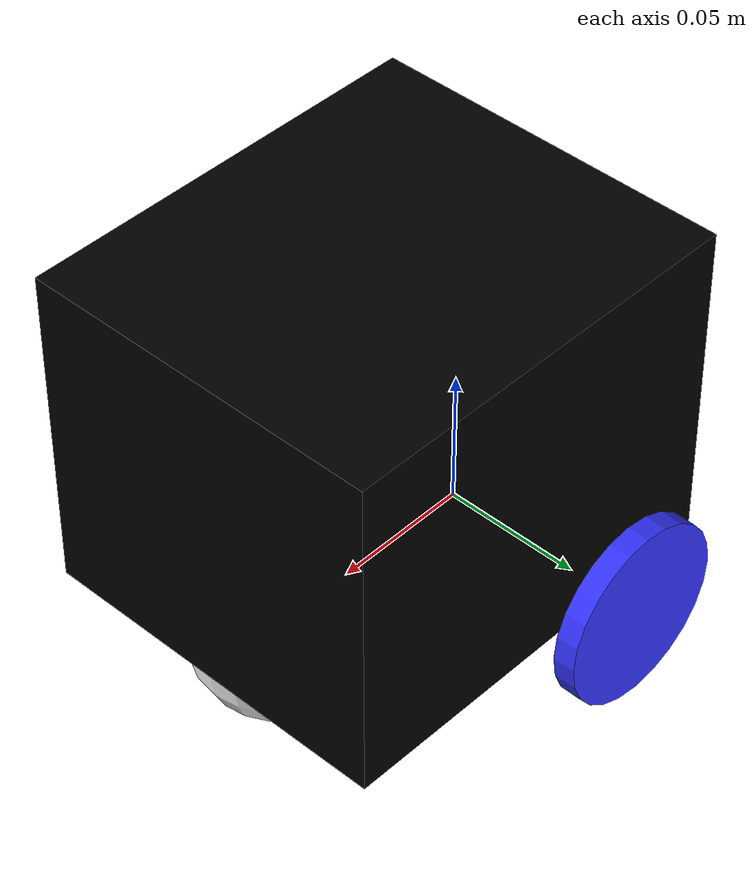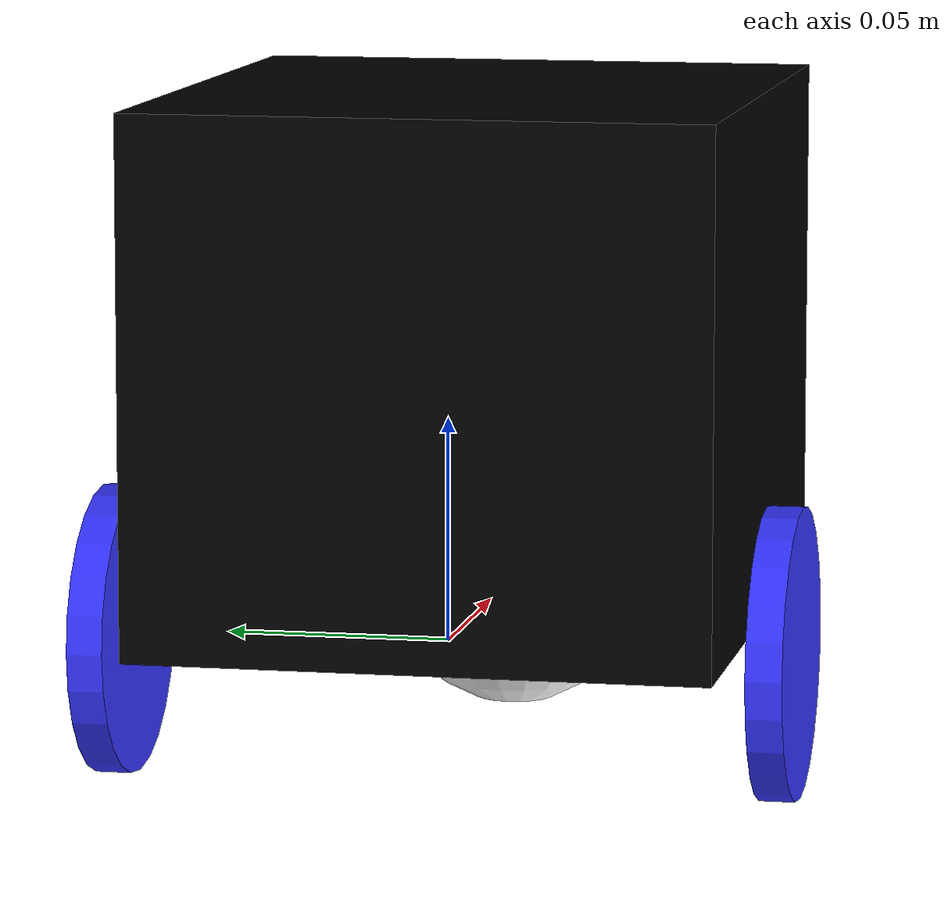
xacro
<?xml version="1.0"?>
<robot xmlns:xacro="http://www.ros.org/wiki/xacro" >

    <xacro:include filename="inertial_macros.xacro" />

    <!--COLORS-->

    <material name="white">
        <color rgba="1 1 1 1" />
    </material>

    <material name="orange">
        <color rgba="1 0.3 0.1 1" />
    </material>

    <material name="blue">
        <color rgba="0.2 0.2 1 1" />
    </material>

    <material name="black">
        <color rgba="0 0 0 1" />
    </material>

    <material name="red">
        <color rgba="1 0 0 1" />
    </material>

    <!--BASE LINK (standard to do in ROS)-->

    <link name="base_link">

    </link>

    <!--BASE FOOTPRINT LINK-->

    <joint name="base_footprint_joint" type="fixed">
        <parent link="base_link"/>
        <child link="base_footprint"/>
        <origin xyz="0 0 0" rpy="0 0 0"/>
    </joint>

    <link name="base_footprint">

    </link>

    <!--CHASSIS LINK-->

    <joint name="chassis_joint" type="fixed">
        <parent link="base_link" />
        <child link="chassis" />
        <origin xyz="-0.040 0 0" />
    </joint>

    <link name="chassis">
        <visual>
            <origin xyz="0.075 0 0.060" />
            <geometry>
                <box size="0.15 0.13 0.12"/>
            </geometry>
            <material name="black"/>
        </visual>
        <collision>
            <origin xyz="0.075 0 0.060" />
            <geometry>
                <box size="0.15 0.13 0.12"/>
            </geometry>
        </collision>
        <xacro:inertial_box mass="0.5" x="0.15" y="0.13" z="0.12">
            <origin xyz="0.075 0 0.060" rpy="0 0 0"/>
        </xacro:inertial_box>
    </link>

    <gazebo reference="chassis">
        <material>Gazebo/Black</material>
    </gazebo>

    <!--LEFT WHEEL LINK-->

    <joint name="left_wheel_joint" type="continuous">
        <parent link="base_link"/>
        <child link="left_wheel"/>
        <origin xyz="0 0.075 0" rpy="-${pi/2} 0 0"/>
        <axis xyz="0 0 1"/>
    </joint>

    <link name="left_wheel">
        <visual>
            <geometry>
                <cylinder radius="0.0325" length="0.008"/>
            </geometry>
            <material name="blue" />
        </visual>
        <collision>
            <geometry>
                <cylinder radius="0.0325" length="0.008"/>
            </geometry>
        </collision>
        <xacro:inertial_cylinder mass="0.1" length="0.008" radius="0.0325">
            <origin xyz="0 0 0" rpy="0 0 0"/>
        </xacro:inertial_cylinder>
    </link>

    <gazebo reference="left_wheel">
        <material>Gazebo/Blue</material>
    </gazebo>

    <!--RIGHT WHEEL LINK-->

    <joint name="right_wheel_joint" type="continuous">
        <parent link="base_link"/>
        <child link="right_wheel"/>
        <origin xyz="0 -0.075 0" rpy="${pi/2} 0 0"/>
        <axis xyz="0 0 -1"/>
    </joint>

    <link name="right_wheel">
        <visual>
            <geometry>
                <cylinder radius="0.0325" length="0.008"/>
            </geometry>
            <material name="blue" />
        </visual>
        <collision>
            <geometry>
                <cylinder radius="0.0325" length="0.008"/>
            </geometry>
        </collision>
        <xacro:inertial_cylinder mass="0.1" length="0.008" radius="0.0325">
            <origin xyz="0 0 0" rpy="0 0 0"/>
        </xacro:inertial_cylinder>
    </link>

    <gazebo reference="right_wheel">
        <material>Gazebo/Blue</material>
    </gazebo>

    <!--CASTER WHEEL LINK-->

    <joint name="caster_wheel_joint" type="fixed">
        <parent link="chassis"/>
        <child link="caster_wheel"/>
        <origin xyz="0.12 0 0" />
    </joint>

    <link name="caster_wheel">
        <visual>
            <geometry>
                <sphere radius="0.03"/>
            </geometry>
            <material name="white"/>
        </visual>
        <collision>
            <geometry>
                <sphere radius="0.03"/>
            </geometry>
        </collision>
        <xacro:inertial_sphere mass="0.1" radius="0.03">
            <origin xyz="0 0 0" rpy="0 0 0"/>
        </xacro:inertial_sphere>
    </link>

    <gazebo reference="caster_wheel">
        <material>Gazebo/White</material>
        <mu1 value="0.001"/>
        <mu2 value="0.001"/>
    </gazebo>

</robot>
